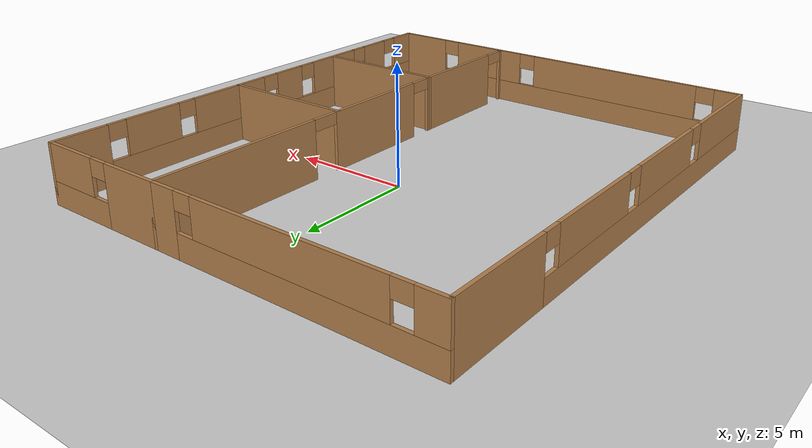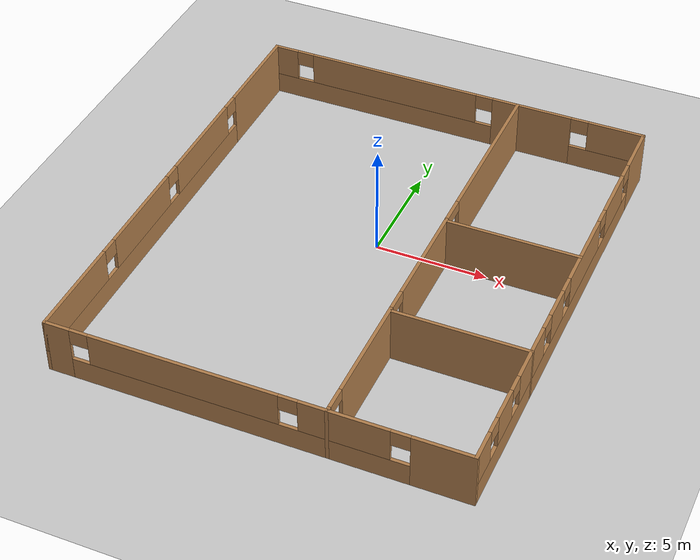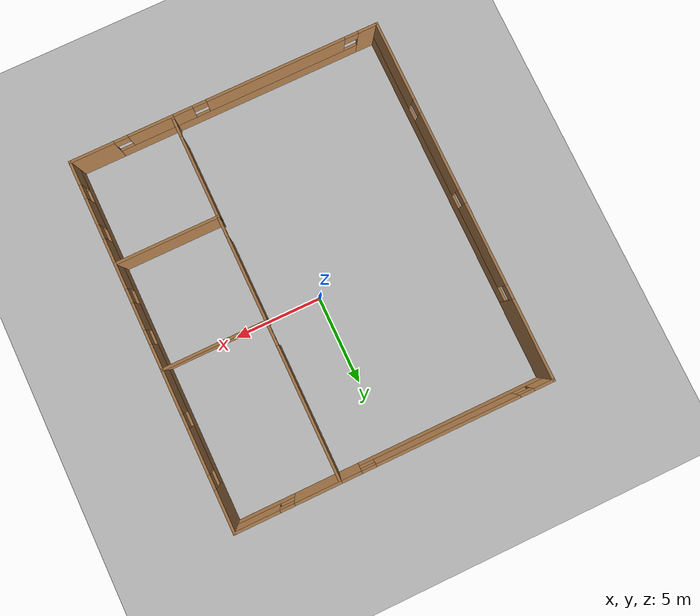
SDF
<sdf version="1.6">
 <world name="default">
  <model name="ground_plane">
   <static>1</static>
   <link name="link">
    <collision name="collision">
     <geometry><plane><normal>0 0 1</normal><size>100 100</size></plane></geometry>
     <surface>
      <contact><collide_bitmask>65535</collide_bitmask></contact>
      <friction><ode><mu>100</mu><mu2>50</mu2></ode></friction>
     </surface>
    </collision>
    <visual name="visual">
     <cast_shadows>0</cast_shadows>
     <geometry><plane><normal>0 0 1</normal><size>100 100</size></plane></geometry>
     <material>
      <script><uri>file://media/materials/scripts/gazebo.material</uri><name>Gazebo/Grey</name></script>
     </material>
    </visual>
   </link>
  </model>
  <model name="hospital_room2_empty_0">
   <pose>6 -1.5 0 0 -0 0</pose>
   <link name="Wall_0">
    <pose>-2.925 0 0 0 -0 1.5708</pose>
    <visual name="Wall_0_Visual_0">
     <pose>-10.3642 0 1.25 0 -0 0</pose>
     <geometry><box><size>0.271667 0.15 2.5</size></box></geometry>
     <material>
      <script><uri>file://media/materials/scripts/gazebo.material</uri><name>Gazebo/Wood</name></script>
      <ambient>1 1 1 1</ambient>
     </material>
     <meta><layer>0</layer></meta>
    </visual>
    <collision name="Wall_0_Collision_0">
     <geometry><box><size>0.271667 0.15 2.5</size></box></geometry>
     <pose>-10.3642 0 1.25 0 -0 0</pose>
    </collision>
    <visual name="Wall_0_Visual_1">
     <pose>-6.76986 0 1.25 0 -0 0</pose>
     <geometry><box><size>4.91694 0.15 2.5</size></box></geometry>
     <material>
      <script><uri>file://media/materials/scripts/gazebo.material</uri><name>Gazebo/Wood</name></script>
      <ambient>1 1 1 1</ambient>
     </material>
     <meta><layer>0</layer></meta>
    </visual>
    <collision name="Wall_0_Collision_1">
     <geometry><box><size>4.91694 0.15 2.5</size></box></geometry>
     <pose>-6.76986 0 1.25 0 -0 0</pose>
    </collision>
    <visual name="Wall_0_Visual_2">
     <pose>-0.820784 0 1.25 0 -0 0</pose>
     <geometry><box><size>4.98121 0.15 2.5</size></box></geometry>
     <material>
      <script><uri>file://media/materials/scripts/gazebo.material</uri><name>Gazebo/Wood</name></script>
      <ambient>1 1 1 1</ambient>
     </material>
     <meta><layer>0</layer></meta>
    </visual>
    <collision name="Wall_0_Collision_2">
     <geometry><box><size>4.98121 0.15 2.5</size></box></geometry>
     <pose>-0.820784 0 1.25 0 -0 0</pose>
    </collision>
    <visual name="Wall_0_Visual_3">
     <pose>6.68491 0 1.25 0 -0 0</pose>
     <geometry><box><size>7.63018 0.15 2.5</size></box></geometry>
     <material>
      <script><uri>file://media/materials/scripts/gazebo.material</uri><name>Gazebo/Wood</name></script>
      <ambient>1 1 1 1</ambient>
     </material>
     <meta><layer>0</layer></meta>
    </visual>
    <collision name="Wall_0_Collision_3">
     <geometry><box><size>7.63018 0.15 2.5</size></box></geometry>
     <pose>6.68491 0 1.25 0 -0 0</pose>
    </collision>
    <visual name="Wall_0_Visual_4">
     <pose>-9.72833 0 2.25 0 -0 0</pose>
     <geometry><box><size>1 0.15 0.5</size></box></geometry>
     <material>
      <script><uri>file://media/materials/scripts/gazebo.material</uri><name>Gazebo/Wood</name></script>
      <ambient>1 1 1 1</ambient>
     </material>
     <meta><layer>0</layer></meta>
    </visual>
    <collision name="Wall_0_Collision_4">
     <geometry><box><size>1 0.15 0.5</size></box></geometry>
     <pose>-9.72833 0 2.25 0 -0 0</pose>
    </collision>
    <visual name="Wall_0_Visual_5">
     <pose>-3.81139 0 2.25 0 -0 0</pose>
     <geometry><box><size>1 0.15 0.5</size></box></geometry>
     <material>
      <script><uri>file://media/materials/scripts/gazebo.material</uri><name>Gazebo/Wood</name></script>
      <ambient>1 1 1 1</ambient>
     </material>
     <meta><layer>0</layer></meta>
    </visual>
    <collision name="Wall_0_Collision_5">
     <geometry><box><size>1 0.15 0.5</size></box></geometry>
     <pose>-3.81139 0 2.25 0 -0 0</pose>
    </collision>
    <visual name="Wall_0_Visual_6">
     <pose>2.26982 0 2.25 0 -0 0</pose>
     <geometry><box><size>1.2 0.15 0.5</size></box></geometry>
     <material>
      <script><uri>file://media/materials/scripts/gazebo.material</uri><name>Gazebo/Wood</name></script>
      <ambient>1 1 1 1</ambient>
     </material>
     <meta><layer>0</layer></meta>
    </visual>
    <collision name="Wall_0_Collision_6">
     <geometry><box><size>1.2 0.15 0.5</size></box></geometry>
     <pose>2.26982 0 2.25 0 -0 0</pose>
    </collision>
   </link>
   <link name="Wall_10">
    <collision name="Wall_10_Collision">
     <geometry><box><size>6 0.15 2.5</size></box></geometry>
     <pose>0 0 1.25 0 -0 0</pose>
    </collision>
    <visual name="Wall_10_Visual">
     <pose>0 0 1.25 0 -0 0</pose>
     <geometry><box><size>6 0.15 2.5</size></box></geometry>
     <material>
      <script><uri>file://media/materials/scripts/gazebo.material</uri><name>Gazebo/Wood</name></script>
      <ambient>1 1 1 1</ambient>
     </material>
     <meta><layer>0</layer></meta>
    </visual>
    <pose>-0 -4.5 0 0 -0 0</pose>
   </link>
   <link name="Wall_2">
    <pose>-0 10.425 0 0 -0 0</pose>
    <visual name="Wall_2_Visual_0">
     <pose>-1.69561 0 1.25 0 -0 0</pose>
     <geometry><box><size>2.60879 0.15 2.5</size></box></geometry>
     <material>
      <script><uri>file://media/materials/scripts/gazebo.material</uri><name>Gazebo/Wood</name></script>
      <ambient>1 1 1 1</ambient>
     </material>
     <meta><layer>0</layer></meta>
    </visual>
    <collision name="Wall_2_Collision_0">
     <geometry><box><size>2.60879 0.15 2.5</size></box></geometry>
     <pose>-1.69561 0 1.25 0 -0 0</pose>
    </collision>
    <visual name="Wall_2_Visual_1">
     <pose>1.30439 0 0.5 0 -0 0</pose>
     <geometry><box><size>3.39121 0.15 1</size></box></geometry>
     <material>
      <script><uri>file://media/materials/scripts/gazebo.material</uri><name>Gazebo/Wood</name></script>
      <ambient>1 1 1 1</ambient>
     </material>
     <meta><layer>0</layer></meta>
    </visual>
    <collision name="Wall_2_Collision_1">
     <geometry><box><size>3.39121 0.15 1</size></box></geometry>
     <pose>1.30439 0 0.5 0 -0 0</pose>
    </collision>
    <visual name="Wall_2_Visual_2">
     <pose>1.7044 0 1.75 0 -0 0</pose>
     <geometry><box><size>2.59121 0.15 1.5</size></box></geometry>
     <material>
      <script><uri>file://media/materials/scripts/gazebo.material</uri><name>Gazebo/Wood</name></script>
      <ambient>1 1 1 1</ambient>
     </material>
     <meta><layer>0</layer></meta>
    </visual>
    <collision name="Wall_2_Collision_2">
     <geometry><box><size>2.59121 0.15 1.5</size></box></geometry>
     <pose>1.7044 0 1.75 0 -0 0</pose>
    </collision>
    <visual name="Wall_2_Visual_3">
     <pose>0.008791 0 2.15 0 -0 0</pose>
     <geometry><box><size>0.8 0.15 0.7</size></box></geometry>
     <material>
      <script><uri>file://media/materials/scripts/gazebo.material</uri><name>Gazebo/Wood</name></script>
      <ambient>1 1 1 1</ambient>
     </material>
     <meta><layer>0</layer></meta>
    </visual>
    <collision name="Wall_2_Collision_3">
     <geometry><box><size>0.8 0.15 0.7</size></box></geometry>
     <pose>0.008791 0 2.15 0 -0 0</pose>
    </collision>
   </link>
   <link name="Wall_4">
    <pose>2.925 0 0 0 -0 -1.5708</pose>
    <visual name="Wall_4_Visual_0">
     <pose>-9.29746 0 1.25 0 -0 0</pose>
     <geometry><box><size>2.40508 0.15 2.5</size></box></geometry>
     <material>
      <script><uri>file://media/materials/scripts/gazebo.material</uri><name>Gazebo/Wood</name></script>
      <ambient>1 1 1 1</ambient>
     </material>
     <meta><layer>0</layer></meta>
    </visual>
    <collision name="Wall_4_Collision_0">
     <geometry><box><size>2.40508 0.15 2.5</size></box></geometry>
     <pose>-9.29746 0 1.25 0 -0 0</pose>
    </collision>
    <visual name="Wall_4_Visual_1">
     <pose>1.20254 0 0.5 0 -0 0</pose>
     <geometry><box><size>18.5949 0.15 1</size></box></geometry>
     <material>
      <script><uri>file://media/materials/scripts/gazebo.material</uri><name>Gazebo/Wood</name></script>
      <ambient>1 1 1 1</ambient>
     </material>
     <meta><layer>0</layer></meta>
    </visual>
    <collision name="Wall_4_Collision_1">
     <geometry><box><size>18.5949 0.15 1</size></box></geometry>
     <pose>1.20254 0 0.5 0 -0 0</pose>
    </collision>
    <visual name="Wall_4_Visual_2">
     <pose>-6.03126 0 1.75 0 -0 0</pose>
     <geometry><box><size>2.52732 0.15 1.5</size></box></geometry>
     <material>
      <script><uri>file://media/materials/scripts/gazebo.material</uri><name>Gazebo/Wood</name></script>
      <ambient>1 1 1 1</ambient>
     </material>
     <meta><layer>0</layer></meta>
    </visual>
    <collision name="Wall_4_Collision_2">
     <geometry><box><size>2.52732 0.15 1.5</size></box></geometry>
     <pose>-6.03126 0 1.75 0 -0 0</pose>
    </collision>
    <visual name="Wall_4_Visual_3">
     <pose>-2.02155 0 1.75 0 -0 0</pose>
     <geometry><box><size>3.8921 0.15 1.5</size></box></geometry>
     <material>
      <script><uri>file://media/materials/scripts/gazebo.material</uri><name>Gazebo/Wood</name></script>
      <ambient>1 1 1 1</ambient>
     </material>
     <meta><layer>0</layer></meta>
    </visual>
    <collision name="Wall_4_Collision_3">
     <geometry><box><size>3.8921 0.15 1.5</size></box></geometry>
     <pose>-2.02155 0 1.75 0 -0 0</pose>
    </collision>
    <visual name="Wall_4_Visual_4">
     <pose>1.49744 0 1.75 0 -0 0</pose>
     <geometry><box><size>1.54589 0.15 1.5</size></box></geometry>
     <material>
      <script><uri>file://media/materials/scripts/gazebo.material</uri><name>Gazebo/Wood</name></script>
      <ambient>1 1 1 1</ambient>
     </material>
     <meta><layer>0</layer></meta>
    </visual>
    <collision name="Wall_4_Collision_4">
     <geometry><box><size>1.54589 0.15 1.5</size></box></geometry>
     <pose>1.49744 0 1.75 0 -0 0</pose>
    </collision>
    <visual name="Wall_4_Visual_5">
     <pose>4.50824 0 1.75 0 -0 0</pose>
     <geometry><box><size>2.87571 0.15 1.5</size></box></geometry>
     <material>
      <script><uri>file://media/materials/scripts/gazebo.material</uri><name>Gazebo/Wood</name></script>
      <ambient>1 1 1 1</ambient>
     </material>
     <meta><layer>0</layer></meta>
    </visual>
    <collision name="Wall_4_Collision_5">
     <geometry><box><size>2.87571 0.15 1.5</size></box></geometry>
     <pose>4.50824 0 1.75 0 -0 0</pose>
    </collision>
    <visual name="Wall_4_Visual_6">
     <pose>7.51696 0 1.75 0 -0 0</pose>
     <geometry><box><size>1.54173 0.15 1.5</size></box></geometry>
     <material>
      <script><uri>file://media/materials/scripts/gazebo.material</uri><name>Gazebo/Wood</name></script>
      <ambient>1 1 1 1</ambient>
     </material>
     <meta><layer>0</layer></meta>
    </visual>
    <collision name="Wall_4_Collision_6">
     <geometry><box><size>1.54173 0.15 1.5</size></box></geometry>
     <pose>7.51696 0 1.75 0 -0 0</pose>
    </collision>
    <visual name="Wall_4_Visual_7">
     <pose>9.79392 0 1.75 0 -0 0</pose>
     <geometry><box><size>1.41217 0.15 1.5</size></box></geometry>
     <material>
      <script><uri>file://media/materials/scripts/gazebo.material</uri><name>Gazebo/Wood</name></script>
      <ambient>1 1 1 1</ambient>
     </material>
     <meta><layer>0</layer></meta>
    </visual>
    <collision name="Wall_4_Collision_7">
     <geometry><box><size>1.41217 0.15 1.5</size></box></geometry>
     <pose>9.79392 0 1.75 0 -0 0</pose>
    </collision>
    <visual name="Wall_4_Visual_8">
     <pose>-7.69492 0 2.15 0 -0 0</pose>
     <geometry><box><size>0.8 0.15 0.7</size></box></geometry>
     <material>
      <script><uri>file://media/materials/scripts/gazebo.material</uri><name>Gazebo/Wood</name></script>
      <ambient>1 1 1 1</ambient>
     </material>
     <meta><layer>0</layer></meta>
    </visual>
    <collision name="Wall_4_Collision_8">
     <geometry><box><size>0.8 0.15 0.7</size></box></geometry>
     <pose>-7.69492 0 2.15 0 -0 0</pose>
    </collision>
    <visual name="Wall_4_Visual_9">
     <pose>-4.36759 0 2.15 0 -0 0</pose>
     <geometry><box><size>0.8 0.15 0.7</size></box></geometry>
     <material>
      <script><uri>file://media/materials/scripts/gazebo.material</uri><name>Gazebo/Wood</name></script>
      <ambient>1 1 1 1</ambient>
     </material>
     <meta><layer>0</layer></meta>
    </visual>
    <collision name="Wall_4_Collision_9">
     <geometry><box><size>0.8 0.15 0.7</size></box></geometry>
     <pose>-4.36759 0 2.15 0 -0 0</pose>
    </collision>
    <visual name="Wall_4_Visual_10">
     <pose>0.324501 0 2.15 0 -0 0</pose>
     <geometry><box><size>0.8 0.15 0.7</size></box></geometry>
     <material>
      <script><uri>file://media/materials/scripts/gazebo.material</uri><name>Gazebo/Wood</name></script>
      <ambient>1 1 1 1</ambient>
     </material>
     <meta><layer>0</layer></meta>
    </visual>
    <collision name="Wall_4_Collision_10">
     <geometry><box><size>0.8 0.15 0.7</size></box></geometry>
     <pose>0.324501 0 2.15 0 -0 0</pose>
    </collision>
    <visual name="Wall_4_Visual_11">
     <pose>2.67039 0 2.15 0 -0 0</pose>
     <geometry><box><size>0.8 0.15 0.7</size></box></geometry>
     <material>
      <script><uri>file://media/materials/scripts/gazebo.material</uri><name>Gazebo/Wood</name></script>
      <ambient>1 1 1 1</ambient>
     </material>
     <meta><layer>0</layer></meta>
    </visual>
    <collision name="Wall_4_Collision_11">
     <geometry><box><size>0.8 0.15 0.7</size></box></geometry>
     <pose>2.67039 0 2.15 0 -0 0</pose>
    </collision>
    <visual name="Wall_4_Visual_12">
     <pose>6.3461 0 2.15 0 -0 0</pose>
     <geometry><box><size>0.8 0.15 0.7</size></box></geometry>
     <material>
      <script><uri>file://media/materials/scripts/gazebo.material</uri><name>Gazebo/Wood</name></script>
      <ambient>1 1 1 1</ambient>
     </material>
     <meta><layer>0</layer></meta>
    </visual>
    <collision name="Wall_4_Collision_12">
     <geometry><box><size>0.8 0.15 0.7</size></box></geometry>
     <pose>6.3461 0 2.15 0 -0 0</pose>
    </collision>
    <visual name="Wall_4_Visual_13">
     <pose>8.68783 0 2.15 0 -0 0</pose>
     <geometry><box><size>0.8 0.15 0.7</size></box></geometry>
     <material>
      <script><uri>file://media/materials/scripts/gazebo.material</uri><name>Gazebo/Wood</name></script>
      <ambient>1 1 1 1</ambient>
     </material>
     <meta><layer>0</layer></meta>
    </visual>
    <collision name="Wall_4_Collision_13">
     <geometry><box><size>0.8 0.15 0.7</size></box></geometry>
     <pose>8.68783 0 2.15 0 -0 0</pose>
    </collision>
   </link>
   <link name="Wall_6">
    <pose>-0 -10.425 0 0 -0 3.14159</pose>
    <visual name="Wall_6_Visual_0">
     <pose>-1.7044 0 1.25 0 -0 0</pose>
     <geometry><box><size>2.59121 0.15 2.5</size></box></geometry>
     <material>
      <script><uri>file://media/materials/scripts/gazebo.material</uri><name>Gazebo/Wood</name></script>
      <ambient>1 1 1 1</ambient>
     </material>
     <meta><layer>0</layer></meta>
    </visual>
    <collision name="Wall_6_Collision_0">
     <geometry><box><size>2.59121 0.15 2.5</size></box></geometry>
     <pose>-1.7044 0 1.25 0 -0 0</pose>
    </collision>
    <visual name="Wall_6_Visual_1">
     <pose>1.2956 0 0.5 0 -0 0</pose>
     <geometry><box><size>3.40879 0.15 1</size></box></geometry>
     <material>
      <script><uri>file://media/materials/scripts/gazebo.material</uri><name>Gazebo/Wood</name></script>
      <ambient>1 1 1 1</ambient>
     </material>
     <meta><layer>0</layer></meta>
    </visual>
    <collision name="Wall_6_Collision_1">
     <geometry><box><size>3.40879 0.15 1</size></box></geometry>
     <pose>1.2956 0 0.5 0 -0 0</pose>
    </collision>
    <visual name="Wall_6_Visual_2">
     <pose>1.69561 0 1.75 0 -0 0</pose>
     <geometry><box><size>2.60879 0.15 1.5</size></box></geometry>
     <material>
      <script><uri>file://media/materials/scripts/gazebo.material</uri><name>Gazebo/Wood</name></script>
      <ambient>1 1 1 1</ambient>
     </material>
     <meta><layer>0</layer></meta>
    </visual>
    <collision name="Wall_6_Collision_2">
     <geometry><box><size>2.60879 0.15 1.5</size></box></geometry>
     <pose>1.69561 0 1.75 0 -0 0</pose>
    </collision>
    <visual name="Wall_6_Visual_3">
     <pose>-0.008791 0 2.15 0 -0 0</pose>
     <geometry><box><size>0.8 0.15 0.7</size></box></geometry>
     <material>
      <script><uri>file://media/materials/scripts/gazebo.material</uri><name>Gazebo/Wood</name></script>
      <ambient>1 1 1 1</ambient>
     </material>
     <meta><layer>0</layer></meta>
    </visual>
    <collision name="Wall_6_Collision_3">
     <geometry><box><size>0.8 0.15 0.7</size></box></geometry>
     <pose>-0.008791 0 2.15 0 -0 0</pose>
    </collision>
   </link>
   <link name="Wall_8">
    <collision name="Wall_8_Collision">
     <geometry><box><size>6 0.15 2.5</size></box></geometry>
     <pose>0 0 1.25 0 -0 0</pose>
    </collision>
    <visual name="Wall_8_Visual">
     <pose>0 0 1.25 0 -0 0</pose>
     <geometry><box><size>6 0.15 2.5</size></box></geometry>
     <material>
      <script><uri>file://media/materials/scripts/gazebo.material</uri><name>Gazebo/Wood</name></script>
      <ambient>1 1 1 1</ambient>
     </material>
     <meta><layer>0</layer></meta>
    </visual>
    <pose>-0 1.5 0 0 -0 0</pose>
   </link>
   <static>1</static>
  </model>
  <model name="hospital_corridor_2">
   <pose>-2.9625 -1.5 0 0 -0 0</pose>
   <link name="Wall_12">
    <pose>1e-06 10.425 0 0 -0 3.14159</pose>
    <visual name="Wall_12_Visual_0">
     <pose>-5.44242 0 1.25 0 -0 0</pose>
     <geometry><box><size>1.19015 0.15 2.5</size></box></geometry>
     <material>
      <script><uri>file://media/materials/scripts/gazebo.material</uri><name>Gazebo/Wood</name></script>
      <ambient>1 1 1 1</ambient>
     </material>
     <meta><layer>0</layer></meta>
    </visual>
    <collision name="Wall_12_Collision_0">
     <geometry><box><size>1.19015 0.15 2.5</size></box></geometry>
     <pose>-5.44242 0 1.25 0 -0 0</pose>
    </collision>
    <visual name="Wall_12_Visual_1">
     <pose>0.595076 0 0.5 0 -0 0</pose>
     <geometry><box><size>10.8848 0.15 1</size></box></geometry>
     <material>
      <script><uri>file://media/materials/scripts/gazebo.material</uri><name>Gazebo/Wood</name></script>
      <ambient>1 1 1 1</ambient>
     </material>
     <meta><layer>0</layer></meta>
    </visual>
    <collision name="Wall_12_Collision_1">
     <geometry><box><size>10.8848 0.15 1</size></box></geometry>
     <pose>0.595076 0 0.5 0 -0 0</pose>
    </collision>
    <visual name="Wall_12_Visual_2">
     <pose>0.005295 0 1.75 0 -0 0</pose>
     <geometry><box><size>8.10528 0.15 1.5</size></box></geometry>
     <material>
      <script><uri>file://media/materials/scripts/gazebo.material</uri><name>Gazebo/Wood</name></script>
      <ambient>1 1 1 1</ambient>
     </material>
     <meta><layer>0</layer></meta>
    </visual>
    <collision name="Wall_12_Collision_2">
     <geometry><box><size>8.10528 0.15 1.5</size></box></geometry>
     <pose>0.005295 0 1.75 0 -0 0</pose>
    </collision>
    <visual name="Wall_12_Visual_3">
     <pose>5.44772 0 1.75 0 -0 0</pose>
     <geometry><box><size>1.17956 0.15 1.5</size></box></geometry>
     <material>
      <script><uri>file://media/materials/scripts/gazebo.material</uri><name>Gazebo/Wood</name></script>
      <ambient>1 1 1 1</ambient>
     </material>
     <meta><layer>0</layer></meta>
    </visual>
    <collision name="Wall_12_Collision_3">
     <geometry><box><size>1.17956 0.15 1.5</size></box></geometry>
     <pose>5.44772 0 1.75 0 -0 0</pose>
    </collision>
    <visual name="Wall_12_Visual_4">
     <pose>-4.44735 0 2.15 0 -0 0</pose>
     <geometry><box><size>0.8 0.15 0.7</size></box></geometry>
     <material>
      <script><uri>file://media/materials/scripts/gazebo.material</uri><name>Gazebo/Wood</name></script>
      <ambient>1 1 1 1</ambient>
     </material>
     <meta><layer>0</layer></meta>
    </visual>
    <collision name="Wall_12_Collision_4">
     <geometry><box><size>0.8 0.15 0.7</size></box></geometry>
     <pose>-4.44735 0 2.15 0 -0 0</pose>
    </collision>
    <visual name="Wall_12_Visual_5">
     <pose>4.45794 0 2.15 0 -0 0</pose>
     <geometry><box><size>0.8 0.15 0.7</size></box></geometry>
     <material>
      <script><uri>file://media/materials/scripts/gazebo.material</uri><name>Gazebo/Wood</name></script>
      <ambient>1 1 1 1</ambient>
     </material>
     <meta><layer>0</layer></meta>
    </visual>
    <collision name="Wall_12_Collision_5">
     <geometry><box><size>0.8 0.15 0.7</size></box></geometry>
     <pose>4.45794 0 2.15 0 -0 0</pose>
    </collision>
   </link>
   <link name="Wall_13">
    <pose>-5.9625 0 0 0 -0 -1.5708</pose>
    <visual name="Wall_13_Visual_0">
     <pose>-8.17263 0 1.25 0 -0 0</pose>
     <geometry><box><size>4.65474 0.15 2.5</size></box></geometry>
     <material>
      <script><uri>file://media/materials/scripts/gazebo.material</uri><name>Gazebo/Wood</name></script>
      <ambient>1 1 1 1</ambient>
     </material>
     <meta><layer>0</layer></meta>
    </visual>
    <collision name="Wall_13_Collision_0">
     <geometry><box><size>4.65474 0.15 2.5</size></box></geometry>
     <pose>-8.17263 0 1.25 0 -0 0</pose>
    </collision>
    <visual name="Wall_13_Visual_1">
     <pose>2.32737 0 0.5 0 -0 0</pose>
     <geometry><box><size>16.3453 0.15 1</size></box></geometry>
     <material>
      <script><uri>file://media/materials/scripts/gazebo.material</uri><name>Gazebo/Wood</name></script>
      <ambient>1 1 1 1</ambient>
     </material>
     <meta><layer>0</layer></meta>
    </visual>
    <collision name="Wall_13_Collision_1">
     <geometry><box><size>16.3453 0.15 1</size></box></geometry>
     <pose>2.32737 0 0.5 0 -0 0</pose>
    </collision>
    <visual name="Wall_13_Visual_2">
     <pose>-2.68115 0 1.75 0 -0 0</pose>
     <geometry><box><size>4.72821 0.15 1.5</size></box></geometry>
     <material>
      <script><uri>file://media/materials/scripts/gazebo.material</uri><name>Gazebo/Wood</name></script>
      <ambient>1 1 1 1</ambient>
     </material>
     <meta><layer>0</layer></meta>
    </visual>
    <collision name="Wall_13_Collision_2">
     <geometry><box><size>4.72821 0.15 1.5</size></box></geometry>
     <pose>-2.68115 0 1.75 0 -0 0</pose>
    </collision>
    <visual name="Wall_13_Visual_3">
     <pose>2.76611 0 1.75 0 -0 0</pose>
     <geometry><box><size>4.5663 0.15 1.5</size></box></geometry>
     <material>
      <script><uri>file://media/materials/scripts/gazebo.material</uri><name>Gazebo/Wood</name></script>
      <ambient>1 1 1 1</ambient>
     </material>
     <meta><layer>0</layer></meta>
    </visual>
    <collision name="Wall_13_Collision_3">
     <geometry><box><size>4.5663 0.15 1.5</size></box></geometry>
     <pose>2.76611 0 1.75 0 -0 0</pose>
    </collision>
    <visual name="Wall_13_Visual_4">
     <pose>8.17463 0 1.75 0 -0 0</pose>
     <geometry><box><size>4.65074 0.15 1.5</size></box></geometry>
     <material>
      <script><uri>file://media/materials/scripts/gazebo.material</uri><name>Gazebo/Wood</name></script>
      <ambient>1 1 1 1</ambient>
     </material>
     <meta><layer>0</layer></meta>
    </visual>
    <collision name="Wall_13_Collision_4">
     <geometry><box><size>4.65074 0.15 1.5</size></box></geometry>
     <pose>8.17463 0 1.75 0 -0 0</pose>
    </collision>
    <visual name="Wall_13_Visual_5">
     <pose>-5.44526 0 2.15 0 -0 0</pose>
     <geometry><box><size>0.8 0.15 0.7</size></box></geometry>
     <material>
      <script><uri>file://media/materials/scripts/gazebo.material</uri><name>Gazebo/Wood</name></script>
      <ambient>1 1 1 1</ambient>
     </material>
     <meta><layer>0</layer></meta>
    </visual>
    <collision name="Wall_13_Collision_5">
     <geometry><box><size>0.8 0.15 0.7</size></box></geometry>
     <pose>-5.44526 0 2.15 0 -0 0</pose>
    </collision>
    <visual name="Wall_13_Visual_6">
     <pose>0.082958 0 2.15 0 -0 0</pose>
     <geometry><box><size>0.8 0.15 0.7</size></box></geometry>
     <material>
      <script><uri>file://media/materials/scripts/gazebo.material</uri><name>Gazebo/Wood</name></script>
      <ambient>1 1 1 1</ambient>
     </material>
     <meta><layer>0</layer></meta>
    </visual>
    <collision name="Wall_13_Collision_6">
     <geometry><box><size>0.8 0.15 0.7</size></box></geometry>
     <pose>0.082958 0 2.15 0 -0 0</pose>
    </collision>
    <visual name="Wall_13_Visual_7">
     <pose>5.44926 0 2.15 0 -0 0</pose>
     <geometry><box><size>0.8 0.15 0.7</size></box></geometry>
     <material>
      <script><uri>file://media/materials/scripts/gazebo.material</uri><name>Gazebo/Wood</name></script>
      <ambient>1 1 1 1</ambient>
     </material>
     <meta><layer>0</layer></meta>
    </visual>
    <collision name="Wall_13_Collision_7">
     <geometry><box><size>0.8 0.15 0.7</size></box></geometry>
     <pose>5.44926 0 2.15 0 -0 0</pose>
    </collision>
   </link>
   <link name="Wall_14">
    <pose>1e-06 -10.425 0 0 -0 0</pose>
    <visual name="Wall_14_Visual_0">
     <pose>-5.44772 0 1.25 0 -0 0</pose>
     <geometry><box><size>1.17956 0.15 2.5</size></box></geometry>
     <material>
      <script><uri>file://media/materials/scripts/gazebo.material</uri><name>Gazebo/Wood</name></script>
      <ambient>1 1 1 1</ambient>
     </material>
     <meta><layer>0</layer></meta>
    </visual>
    <collision name="Wall_14_Collision_0">
     <geometry><box><size>1.17956 0.15 2.5</size></box></geometry>
     <pose>-5.44772 0 1.25 0 -0 0</pose>
    </collision>
    <visual name="Wall_14_Visual_1">
     <pose>0.589782 0 0.5 0 -0 0</pose>
     <geometry><box><size>10.8954 0.15 1</size></box></geometry>
     <material>
      <script><uri>file://media/materials/scripts/gazebo.material</uri><name>Gazebo/Wood</name></script>
      <ambient>1 1 1 1</ambient>
     </material>
     <meta><layer>0</layer></meta>
    </visual>
    <collision name="Wall_14_Collision_1">
     <geometry><box><size>10.8954 0.15 1</size></box></geometry>
     <pose>0.589782 0 0.5 0 -0 0</pose>
    </collision>
    <visual name="Wall_14_Visual_2">
     <pose>-0.005295 0 1.75 0 -0 0</pose>
     <geometry><box><size>8.10528 0.15 1.5</size></box></geometry>
     <material>
      <script><uri>file://media/materials/scripts/gazebo.material</uri><name>Gazebo/Wood</name></script>
      <ambient>1 1 1 1</ambient>
     </material>
     <meta><layer>0</layer></meta>
    </visual>
    <collision name="Wall_14_Collision_2">
     <geometry><box><size>8.10528 0.15 1.5</size></box></geometry>
     <pose>-0.005295 0 1.75 0 -0 0</pose>
    </collision>
    <visual name="Wall_14_Visual_3">
     <pose>5.44242 0 1.75 0 -0 0</pose>
     <geometry><box><size>1.19015 0.15 1.5</size></box></geometry>
     <material>
      <script><uri>file://media/materials/scripts/gazebo.material</uri><name>Gazebo/Wood</name></script>
      <ambient>1 1 1 1</ambient>
     </material>
     <meta><layer>0</layer></meta>
    </visual>
    <collision name="Wall_14_Collision_3">
     <geometry><box><size>1.19015 0.15 1.5</size></box></geometry>
     <pose>5.44242 0 1.75 0 -0 0</pose>
    </collision>
    <visual name="Wall_14_Visual_4">
     <pose>-4.45794 0 2.15 0 -0 0</pose>
     <geometry><box><size>0.8 0.15 0.7</size></box></geometry>
     <material>
      <script><uri>file://media/materials/scripts/gazebo.material</uri><name>Gazebo/Wood</name></script>
      <ambient>1 1 1 1</ambient>
     </material>
     <meta><layer>0</layer></meta>
    </visual>
    <collision name="Wall_14_Collision_4">
     <geometry><box><size>0.8 0.15 0.7</size></box></geometry>
     <pose>-4.45794 0 2.15 0 -0 0</pose>
    </collision>
    <visual name="Wall_14_Visual_5">
     <pose>4.44735 0 2.15 0 -0 0</pose>
     <geometry><box><size>0.8 0.15 0.7</size></box></geometry>
     <material>
      <script><uri>file://media/materials/scripts/gazebo.material</uri><name>Gazebo/Wood</name></script>
      <ambient>1 1 1 1</ambient>
     </material>
     <meta><layer>0</layer></meta>
    </visual>
    <collision name="Wall_14_Collision_5">
     <geometry><box><size>0.8 0.15 0.7</size></box></geometry>
     <pose>4.44735 0 2.15 0 -0 0</pose>
    </collision>
   </link>
   <static>1</static>
  </model>
 </world>
</sdf>
